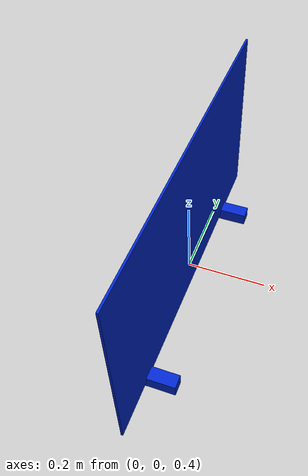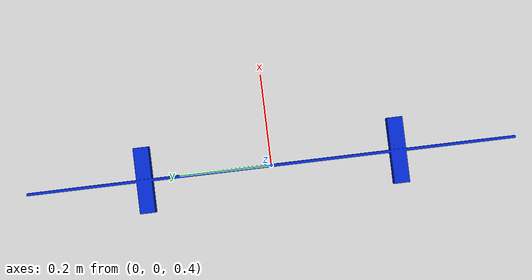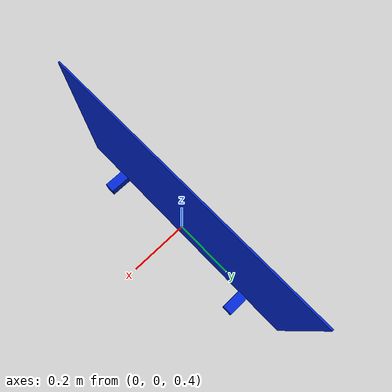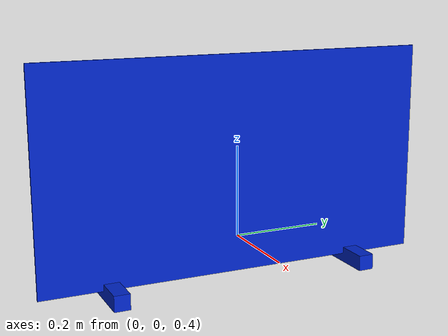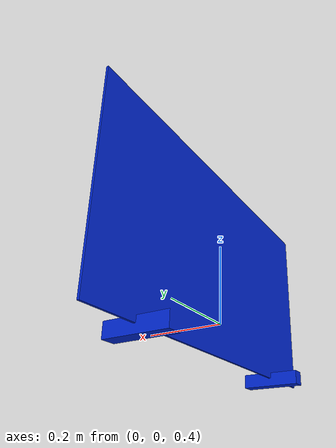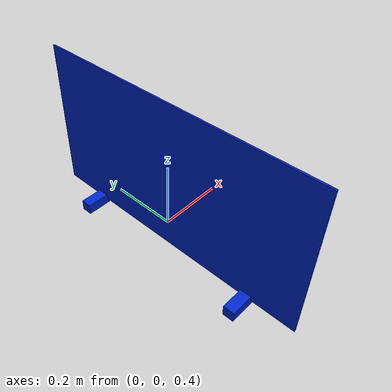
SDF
<?xml version="1.0" ?>
<sdf version="1.5">
  <model name="artificial_wall">
    <static>false</static>
    <link name="link">
      <collision name="collision">
        <pose>0 0 0.3 0 0 0</pose>
        <geometry>
          <mesh>
            <uri>model://artificial_wall/meshes/wall.dae</uri>
          </mesh>
        </geometry>
        <surface>
          <friction>
            <ode>
              <mu>1.0</mu>
              <mu2>1.0</mu2>
            </ode>
          </friction>
          <contact>
            <ode>
              <kp>10000000.0</kp>
              <kd>1.0</kd>
              <min_depth>0.001</min_depth>
              <max_vel>0.1</max_vel>
            </ode>
          </contact>
        </surface>
      </collision>
      <visual name="visual">
        <pose>0 0 0.3 0 0 0</pose>
        <geometry>
          <mesh>
            <uri>model://artificial_wall/meshes/wall.dae</uri>
          </mesh>
        </geometry>
      </visual>
    </link>
  </model>
</sdf>
